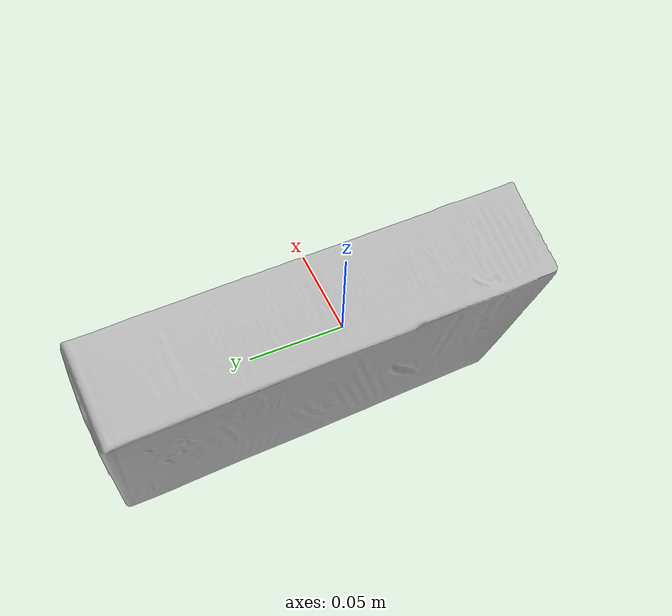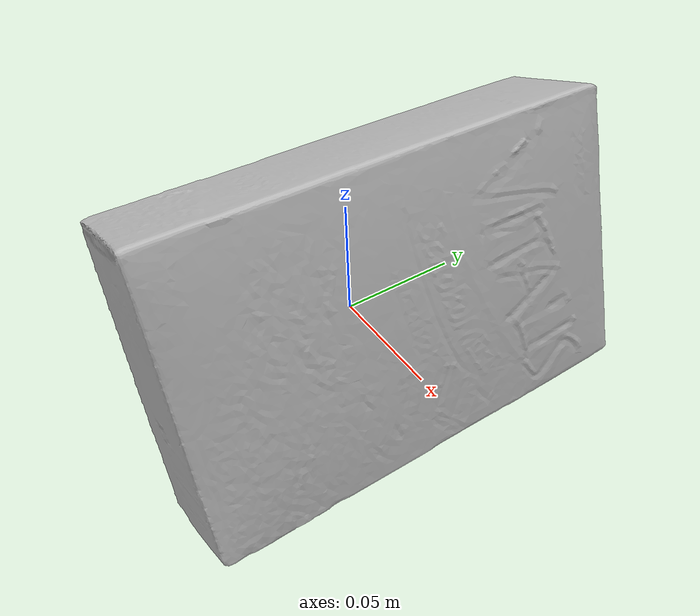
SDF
<?xml version='1.0'?>
<sdf version="1.4">
  <model name="VitalisCereals">
    <static>false</static>
    <link name="link">
      <inertial>
        <pose>-0.0036355469094823995 0.023103648289825335 -0.007093600255451246 1.5941542503139652 0.3109536582872953 -3.1105600356164818</pose>
        <mass>0.159781376328333</mass>
        <inertia>
          <ixx>0.0008738743309786572</ixx>
          <ixy>-5.914518504219524e-20</ixy>
          <ixz>1.9596181729985004e-20</ixz>
          <iyy>0.0006675772438496237</iyy>
          <iyz>-4.377313358346046e-20</iyz>
          <izz>0.00028157196266512366</izz>
        </inertia>
      </inertial>
      <collision name="collision">
        <geometry>
          <mesh>
            <!-- Use a downsampled mesh for collisions -->
            <uri>model:///VitalisCereals/VitalisCereals_250_collision.obj</uri>
	        </mesh>
        </geometry>
        <surface>
      </surface>
      </collision>
      <visual name="visual">
        <geometry>
          <mesh>
            <uri>model:///VitalisCereals/VitalisCereals_25k_tex.obj</uri>
	        </mesh>
        </geometry>
        <material>
          <script>
            <uri>model:///VitalisCereals/VitalisCereals.material</uri>
            <name>VitalisCereals</name>
          </script>
        </material>
      </visual>
    </link>
  </model>
</sdf>
